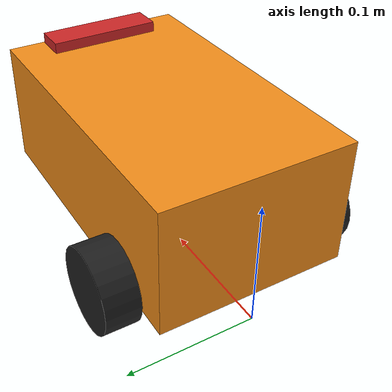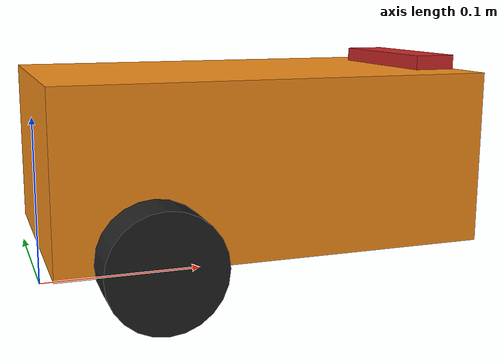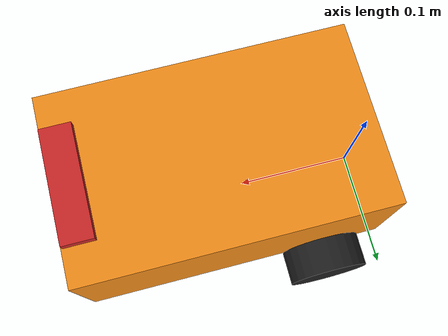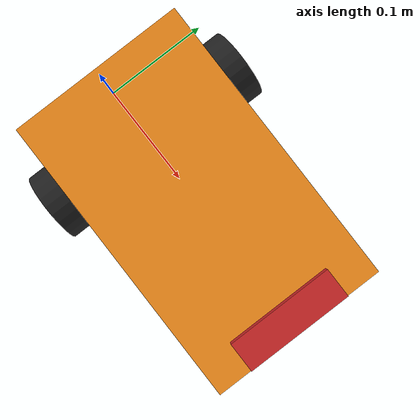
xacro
<?xml version="1.0"?>
<robot xmlns:xacro="http://www.ros.org/wiki/xacro"  name="robot">

    <xacro:arg name="use_ros2_control" default="true"/>

    <xacro:include filename="robot_core.xacro" />

    <xacro:if value="$(arg use_ros2_control)">
        <xacro:include filename="ros2_control.xacro" />
    </xacro:if>
    <xacro:unless value="$(arg use_ros2_control)">
        <xacro:include filename="gazebo_control.xacro" />
    </xacro:unless>
    <xacro:include filename="camera.xacro" />

</robot>

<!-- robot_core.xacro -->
<robot xmlns:xacro="http://www.ros.org/wiki/xacro" >

    <xacro:include filename="inertial_macros.xacro"/>

    <xacro:property name="chassis_length" value="0.250"/>
    <xacro:property name="chassis_width" value="0.150"/>
    <xacro:property name="chassis_height" value="0.1"/>
    <xacro:property name="chassis_mass" value="1.85"/>
    <xacro:property name="wheel_radius" value="0.0325"/>
    <xacro:property name="wheel_thickness" value="0.027"/>
    <xacro:property name="wheel_mass" value="0.05"/>
    <xacro:property name="wheel_offset_x" value="0"/>
    <xacro:property name="wheel_offset_y" value="0"/>
    <xacro:property name="wheel_offset_z" value="0.025"/>
    <xacro:property name="caster_wheel_radius" value="0.01"/>
    <xacro:property name="caster_wheel_mass" value="0.031"/>
    <xacro:property name="caster_wheel_offset_x" value="0.215"/>
    <xacro:property name="caster_wheel_offset_z" value="${wheel_offset_z - wheel_radius + caster_wheel_radius}"/>

    <!-- BASE LINK -->

    <link name="base_link">

    </link>
    <!-- Chassis link -->
    <joint name="chassis_joint" type="fixed">
        <parent link="base_link"/>
        <child link="chassis_link"/>
        <origin xyz="${wheel_offset_x} 0 ${wheel_offset_z}"/>
    </joint>

    <link name="chassis_link">
        <visual>
            <origin xyz="${chassis_length/2} 0 ${chassis_height/2}"/>
            <geometry>
                <box size="${chassis_length} ${chassis_width} ${chassis_height}"/>
            </geometry>
        </visual>
        <collision>
            <origin xyz="${chassis_length/2} 0 ${chassis_height/2}"/>
            <geometry>
                <box size="${chassis_length} ${chassis_width} ${chassis_height}"/>
            </geometry>
        </collision>
        <xacro:inertial_box mass="0.5" x="${chassis_length}" y="${chassis_width}" z="${chassis_height}">
          <origin xyz="${chassis_length/2} 0 ${chassis_height/2}" rpy="0 0 0"/>
        </xacro:inertial_box>
    </link>
    <gazebo reference="chassis_link">
      <material>Gazebo/Orange</material>
    </gazebo>

<!--< right wheel -->
    <joint name="right_wheel_joint" type="continuous">
        <parent link="base_link"/>
        <child link="right_wheel_link"/>
        <origin xyz="0.053 -0.09 ${wheel_offset_z+0.008}" rpy="-${pi/2} 0 0" />
        <axis xyz="0 0 1"/>
    </joint>
    <link name="right_wheel_link">
        <visual>
            <geometry>
                <cylinder radius="${wheel_radius}" length="${wheel_thickness}"/>
            </geometry>
        </visual>
        <collision>
            <geometry>
                <sphere radius="${wheel_radius}"/>
            </geometry>
        </collision>
        <xacro:inertial_cylinder mass="${wheel_mass}" length="${wheel_thickness}" radius="${wheel_radius}">
          <origin xyz="0 0 0" rpy="0 0 0"/>
        </xacro:inertial_cylinder>
    </link>
    <gazebo reference="right_wheel_link">
      <material>Gazebo/Black</material>
    </gazebo>

    <!-- left wheel -->
    <joint name="left_wheel_joint" type="continuous">
        <parent link="base_link"/>
        <child link="left_wheel_link"/>
        <origin xyz="0.053 0.09 ${wheel_offset_z+0.008}" rpy="${pi/2} 0 0" />
        <axis xyz="0 0 -1"/>
    </joint>
    <link name="left_wheel_link">
        <visual>
            <geometry>
                <cylinder radius="${wheel_radius}" length="${wheel_thickness}"/>
            </geometry>
        </visual>
        <collision>
            <geometry>
                <sphere radius="${wheel_radius}"/>
            </geometry>
        </collision>
        <xacro:inertial_cylinder mass="${wheel_mass}" length="${wheel_thickness}" radius="${wheel_radius}">
            <origin xyz="0 0 0" rpy="0 0 0"/>
        </xacro:inertial_cylinder>
    </link>
    <gazebo reference="left_wheel_link">
      <material>Gazebo/Black</material>
    </gazebo>

<!-- caster_wheel_link -->
    <joint name="caster_wheel_joint" type="fixed">
        <parent link="chassis_link" />
        <child link="caster_wheel_link" />
        <origin xyz="${caster_wheel_offset_x} 0 ${caster_wheel_offset_z}"/>
    </joint>
    <link name="caster_wheel_link">
        <visual>
            <origin
                xyz="0 0 0"
                rpy="0 0 0" />
            <geometry>
                <sphere radius="${caster_wheel_radius}"/>
            </geometry>
        </visual>
        <collision>
            <origin
                xyz="0 0 0"
                rpy="0 0 0" />
            <geometry>
                <sphere radius="${caster_wheel_radius+0.02}"/>
            </geometry>
        </collision>
        <xacro:inertial_sphere mass="${caster_wheel_mass}" radius="${caster_wheel_radius}">
            <origin xyz="0 0 0" rpy="0 0 0"/>
        </xacro:inertial_sphere>
    </link>
    <gazebo reference="caster_wheel_link">
        <material>Gazebo/DarkGray</material>
        <mu1 value="0.001"/>
        <mu2 value="0.001"/>
    </gazebo>

</robot>

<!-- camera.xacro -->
<robot xmlns:xacro="http://www.ros.org/wiki/xacro" >

    <!-- Properties -->
    <xacro:property name="wheel_offset_x" value="0.236"/>
    <xacro:property name="wheel_offset_z" value="0.121"/>
    <xacro:property name="camera_length" value="0.025"/>
    <xacro:property name="camera_width" value="0.09"/>
    <xacro:property name="camera_height" value="0.025"/>
    <!-- Camera -->
    <joint name="camera_joint" type="fixed">
      <parent link="base_link" />
      <child link="camera_link" />
      <origin xyz="${wheel_offset_x} 0 ${wheel_offset_z}" rpy="0 0 0"/>
    </joint>
    <link name="camera_link">
      <visual>
        <origin xyz="0 0 0" rpy="0 0 0" />
        <geometry>
          <box size="${camera_length} ${camera_width} ${camera_height}"/>
        </geometry>
      </visual>
      <collision>
        <origin xyz="0 0 0" rpy="0 0 0" />
        <geometry>
          <box size="${camera_length} ${camera_width} ${camera_height}"/>
        </geometry>
      </collision>
    </link>
    <joint name="camera_optical_joint" type="fixed">
        <parent link="camera_link"/>
        <child link="camera_link_optical"/>
        <origin xyz="0 0 0" rpy="-${pi/2} 0 -${pi/2}"/>
    </joint>
    <link name="camera_link_optical"></link>

    <gazebo reference="camera_link">
        <material>Gazebo/Red</material>

        <sensor name="camera" type="camera">
            <pose> 0 0 0 0 0 0 </pose>
            <visualize>true</visualize>
            <update_rate>10</update_rate>
            <camera>
                <horizontal_fov>1.4870205226991688</horizontal_fov>
                <image>
                    <format>R8G8B8</format>
                    <width>640</width>
                    <height>480</height>
                </image>
                <clip>
                    <near>0.05</near>
                    <far>8.0</far>
                </clip>
            </camera>
            <plugin name="camera_controller" filename="libgazebo_ros_camera.so">
                <frame_name>camera_link_optical</frame_name>
            </plugin>
        </sensor>
    </gazebo>

</robot>
